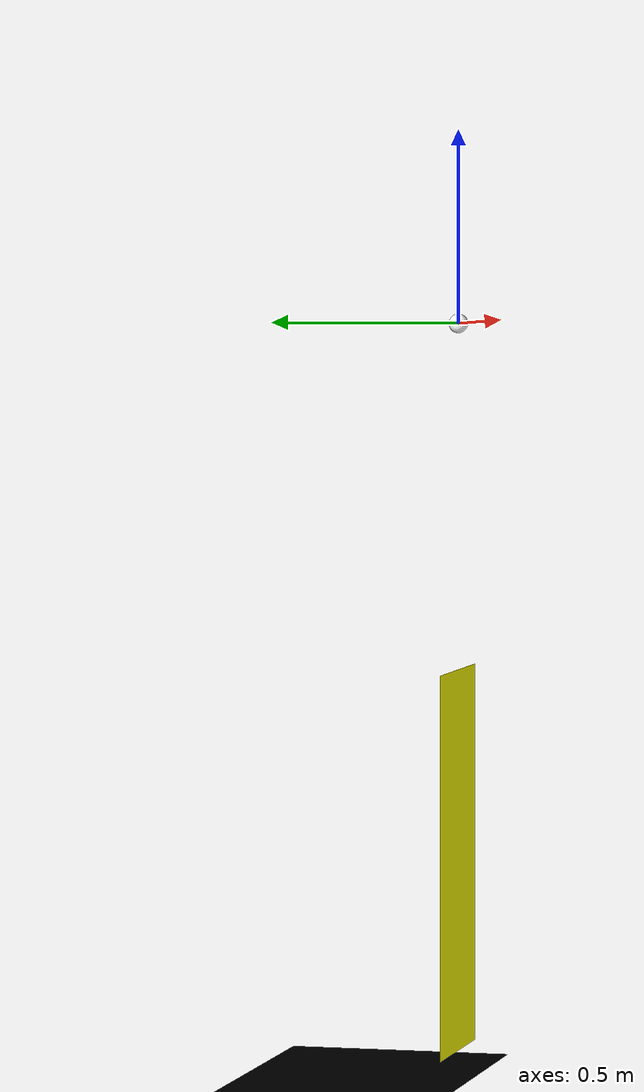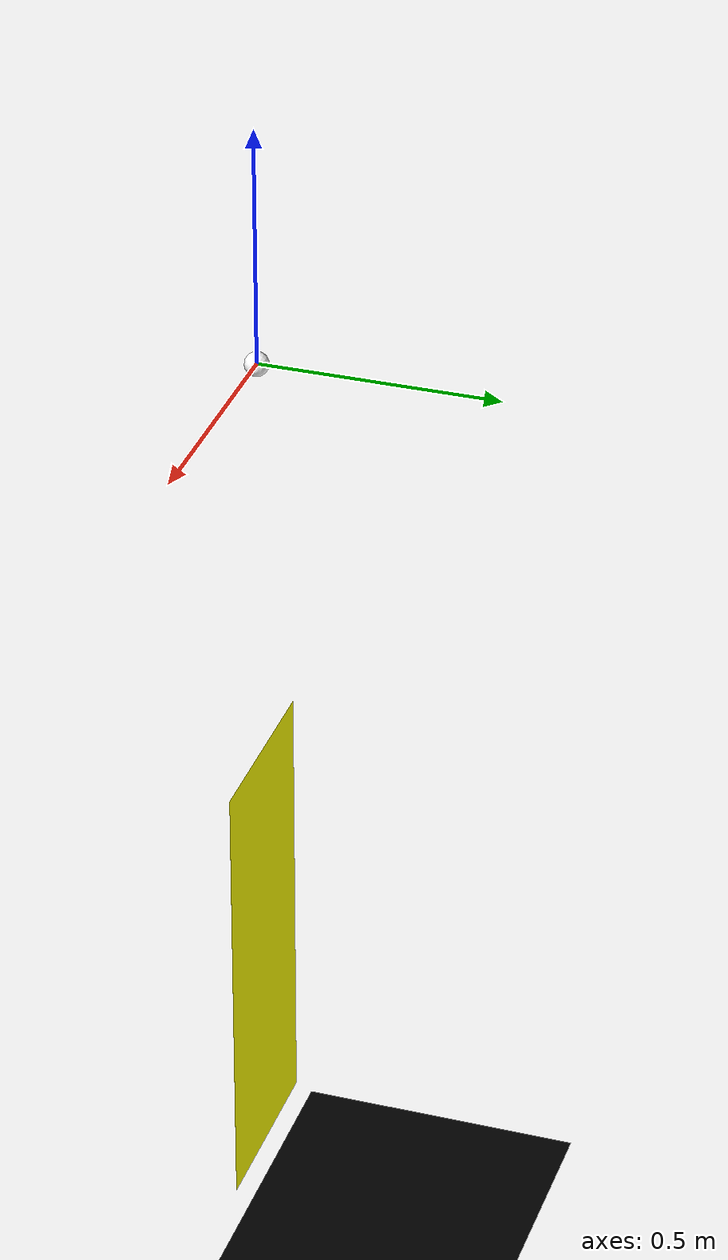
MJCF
<?xml version="1.0"?>
<mujoco>
    <compiler angle="radian"/>
    <option collision="all" timestep="0.002"/>
    <size njmax="1000" nconmax="400"/>
    <default class="main">
        <default class="locomotion-translation">
            <position ctrllimited="true" kp="6"/>
            <joint type="slide" stiffness="0.0" damping="1.2" armature="0.0" limited="true"/>
        </default>

        <default class="eye">
            <position ctrllimited="true" kp="10"/>
            <joint type="hinge" stiffness="0.0" damping="0.05" armature="0.0" limited="true"/>
        </default>

        <default class="straight-walk-path">
            <geom type="box" size="1 5 0.0000001" rgba="0 0 0 1"/>
        </default>

        <default class="destination-sign">
            <geom type="box" size="0.5 0.00001 2" rgba="1 1 1 1"/>
        </default>
    </default>
    <asset>
        <texture type="skybox" builtin="gradient" rgb1="1 1 1" rgb2="0.6 0.8 1" width="256" height="256"/>
        <texture type="cube" name="blue-eye" file="assets/blue_eye_texture_circle.png" gridsize="3 4" gridlayout=".U..LFRB.D.."/>
        <material name="blue-eye" texture="blue-eye" texuniform="true"/>
        <mesh name="eye" file="assets/basic_eye_2.stl" scale="0.05 0.05 0.05"/>
    </asset>
    <worldbody>
        <light name="scene_directional_light" directional="true" castshadow="false" cutoff="4" exponent="20"
               diffuse="1 1 1" specular="0 0 0" pos=".9 .3 2.5"/>

        <camera name="env" pos="13 0 0.15" euler="1.4 1.2 0.2"/>

        <body name="fixed-head-body" pos="0 0 0">
            <body name="eye" pos="0 0 0" quat="0.7071068 0.7071068 0 0">
                <geom name="eye" type="sphere" size="0.025" material="blue-eye" rgba="1 1 1 1" quat="0.6625191 0.0130711 0.7488417 0.0115643"/>
                <camera name="eye" fovy="90"/>
                <joint name="eye-joint-x" class="eye" axis="1 0 0" range="-1.6 0.75"/>
                <site name="rangefinder-site" quat="0 0 1 0"/>
            </body>
            <geom name="body-trunk" pos="0 0 -1.4" type="box" size="0.2 0.00001 0.5" rgba="1 1 0 1" />
            <joint name="body-joint-y" class="locomotion-translation" axis="0 1 0" range="0 12"/>
        </body>

        <body name="straight-walk-path">
            <geom name="straight-path" pos="0 5 -2" class="straight-walk-path"/>
        </body>

    </worldbody>
    <actuator>
        <position name="eye-x-motor" joint="eye-joint-x" class="eye" ctrlrange="-1.6 0.75"/>
        <position name="body-y-motor" joint="body-joint-y" class="locomotion-translation" ctrlrange="0 12"/>
    </actuator>
    <sensor>
        <rangefinder name="rangefinder" site="rangefinder-site"/>
    </sensor>
</mujoco>
